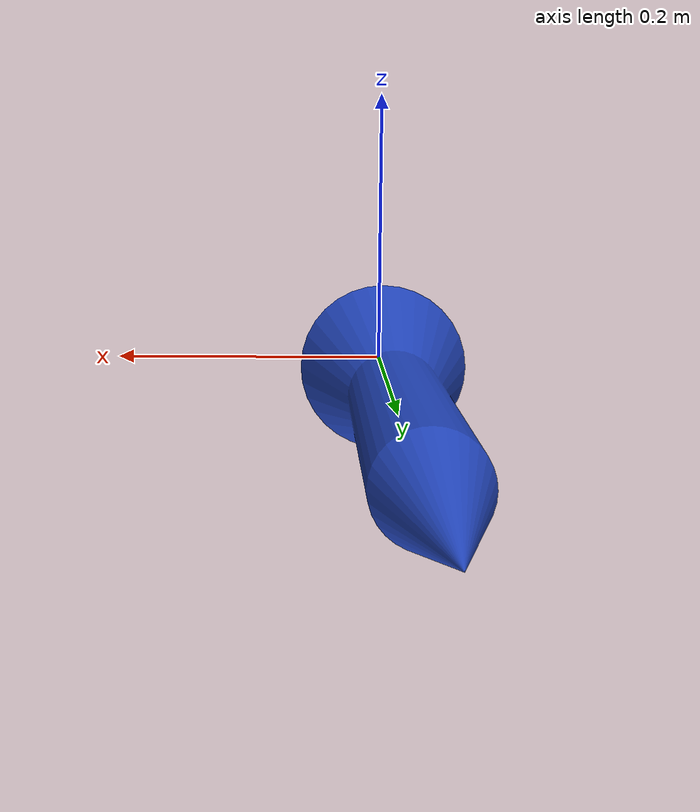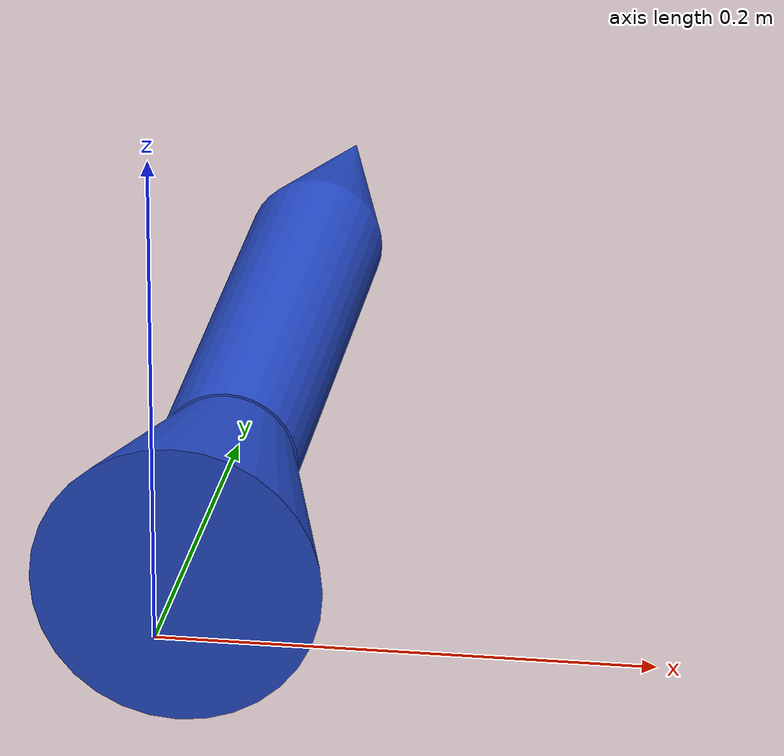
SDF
<?xml version="1.0" ?>
<sdf version="1.4">
<!-- This file is originated from gazebo_auv_sim package by Gigmus: https://github.com/gigimus/gazebo-auv-sim -->
  <model name="torpedo">
    <link name="link">
      <gravity>false</gravity>
      <inertial>
        <mass>0.01</mass>
      </inertial>
      <pose>0 0 0 -1.54 0 0</pose>

      <visual name="visual">
        <geometry>
          <mesh>
            <uri>model://torpedo/torpedo.dae</uri>
          </mesh>
        </geometry>
        <material>
        <script>
          <name>Gazebo/Blue</name>
        </script>
        </material>
      </visual>
      <collision name="collision">
        <geometry>
          <mesh>
            <uri>model://torpedo/torpedo.dae</uri>
          </mesh>
        </geometry>
      </collision>
    </link>
  </model>
</sdf>
